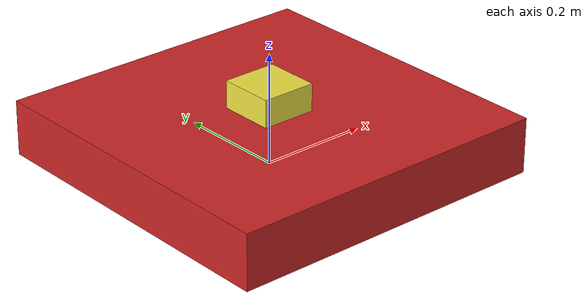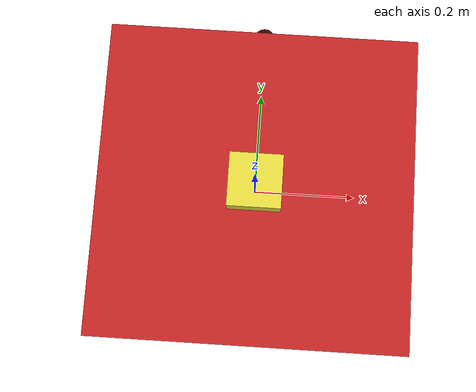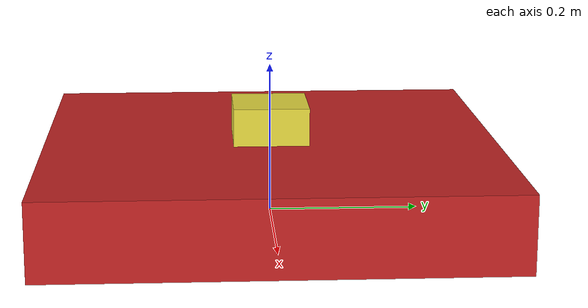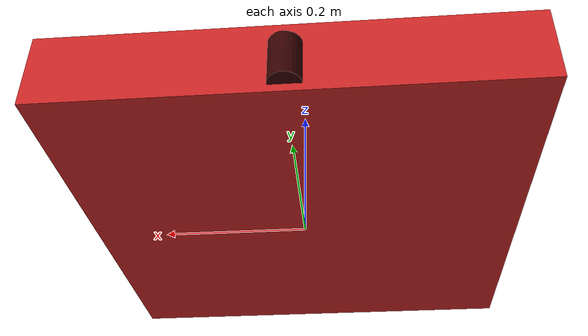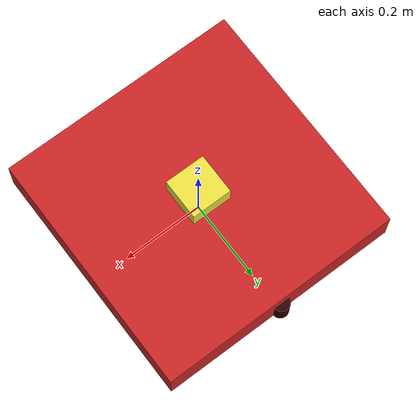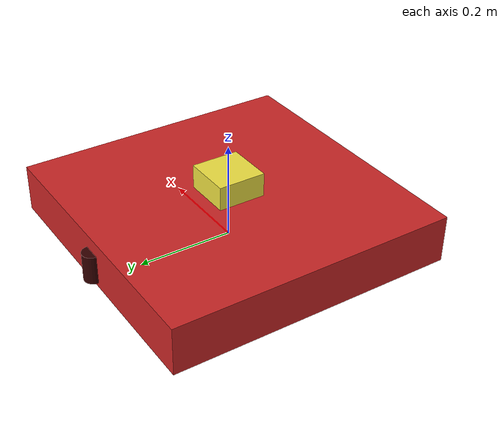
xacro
<?xml version="1.0"?>
<robot name="odm_robot"
    xmlns:xacro="http://ros.org/wiki/xacro">
    <xacro:include filename="$(cwd)/lidar.urdf.xacro" />
    <xacro:include filename="$(cwd)/imu.urdf.xacro" />

    <xacro:property name="PI" value="3.1415926535897931"/>
    <xacro:property name="b_m" value="20.0"/>
    <xacro:property name="b_m2" value="${b_m/12}"/>
    <!--for calculation of inertia-->
    <xacro:property name="b_w" value="0.60"/>
    <xacro:property name="b_h" value="0.1"/>
    <xacro:property name="b_d" value="0.60"/>

    <material name="red">
        <color rgba="0.2 0 0 1"/>
    </material>

    <link name="base_link"/>

    <joint name="body_joint" type="fixed">
        <parent link="base_link"/>
        <child link="body_link"/>
        <origin xyz="0 0 ${b_h/2}" rpy="0 0 0"/>
    </joint>
    <link name="body_link">
        <visual>
            <geometry>
                <box size="${b_d} ${b_w} ${b_h}" />
            </geometry>
        </visual>
        <collision>
            <geometry>
                <box size="${b_d*0.95} ${b_w*0.95} ${b_h*0.95}" />
            </geometry>
        </collision>
        <inertial>
            <origin xyz="0 0 0" rpy="0 0 0" />
            <mass value="${b_m}" />
            <inertia ixx="${b_m2*(b_h*b_h+b_w*b_w)}" ixy="0" ixz="0" iyx="0" iyy="${b_m2*(b_h*b_h+b_d*b_d)}" iyz="0" izx="0" izy="0" izz="${b_m2*(b_w*b_w+b_d*b_d)}" />
        </inertial>
    </link>
    <gazebo reference="body_link">
        <material>Gazebo/Red</material>
        <mu1 value="0.1" />
        <mu2 value="0.1" />
    </gazebo>

    <xacro:laser_macro prefix="lidar" parent="base_link" xyz="0 ${b_w/2} 0.04" rpy="0 0 0" />

    <xacro:imu_macro prefix="imu" parent="base_link" xyz="0.0 0 0.10" />

    <gazebo>
        <plugin name="ignition::gazebo::systems::VelocityControl" filename="ignition-gazebo-velocity-control-system">
        </plugin>
    </gazebo>
</robot>

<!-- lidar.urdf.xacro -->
<robot name="lidar"
    xmlns:xacro="http://ros.org/wiki/xacro">
    <xacro:macro name="laser_macro" params="parent prefix xyz rpy">
        <joint name="${prefix}_joint" type="fixed">
            <parent link="${parent}"/>
            <child link="${prefix}_link"/>
            <origin xyz="${xyz}" rpy="${rpy}"/>
        </joint>
        <link name="${prefix}_link">
            <visual>
                <origin xyz="0 0 0" rpy="0 0 0" />
                <geometry>
                    <cylinder radius="0.02" length="0.06" />
                </geometry>
                <material name="red" />
            </visual>
            <collision>
                <origin xyz="0 0 0" rpy="0 0 0"/>
                <geometry>
                    <cylinder radius="0.02" length="0.06" />
                </geometry>
            </collision>
        </link>
        <gazebo reference="${prefix}_link">
            <material>Gazebo/Red</material>
            <sensor type="gpu_lidar" name="${prefix}">
                <pose>0 0 0 0 0 0</pose>
                <visualize>false</visualize>
                <update_rate>10</update_rate>
                <lidar>
                    <scan>
                        <horizontal>
                            <samples>400</samples>
                            <resolution>1</resolution>
                            <min_angle>${radians(-180)}</min_angle>
                            <max_angle>${radians(180)}</max_angle>
                        </horizontal>
                    </scan>
                    <range>
                        <min>0.10</min>
                        <max>20.0</max>
                        <resolution>0.01</resolution>
                    </range>
                    <noise>
                        <type>gaussian</type>
                        <mean>0.0</mean>
                        <stddev>0.01</stddev>
                    </noise>
                </lidar>
            </sensor>
            <plugin filename="libignition-gazebo-imu-system.so" name="ignition::gazebo::systems::Imu">
            </plugin>
        </gazebo>
    </xacro:macro>
</robot>

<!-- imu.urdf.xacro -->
<robot name="imu"
    xmlns:xacro="http://ros.org/wiki/xacro">
    <xacro:macro name="imu_macro" params="parent prefix xyz">
        <joint name="imu_joint" type="fixed">
            <parent link="${parent}"/>
            <child link="${prefix}_link"/>
            <origin xyz="${xyz}" rpy="0 0 0"/>
        </joint>
        <link name="${prefix}_link">
            <visual>
                <geometry>
                    <box size="0.1 0.1 0.1" />
                </geometry>
            </visual>
            <collision>
                <geometry>
                    <box size="0.1 0.1 0.1" />
                </geometry>
            </collision>
            <inertial>
                <origin xyz="0 0 0" rpy="0 0 0" />
                <mass value="0.1" />
                <inertia ixx="0.0001" ixy="0" ixz="0" iyx="0" iyy="0.0001" iyz="0" izx="0" izy="0" izz="0.0001" />
            </inertial>
        </link>

        <gazebo reference="${prefix}_link">
            <gravity>true</gravity>
            <sensor name="imu_sensor" type="imu">
                <always_on>true</always_on>
                <update_rate>100</update_rate>
                <visualize>true</visualize>
                <topic>imu</topic>
                <pose>0 0 0 0 0 0</pose>
            </sensor>
        </gazebo>
    </xacro:macro>
</robot>
